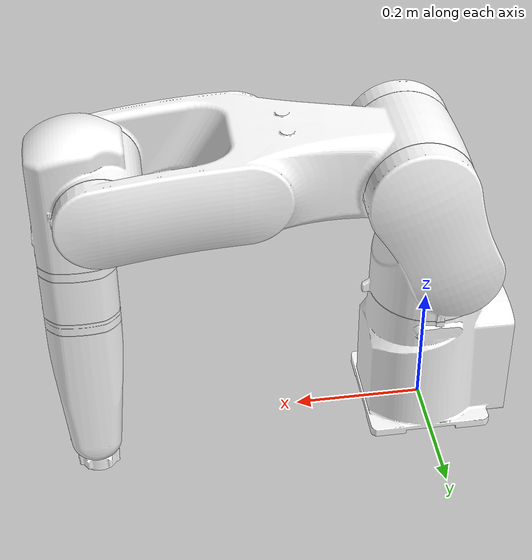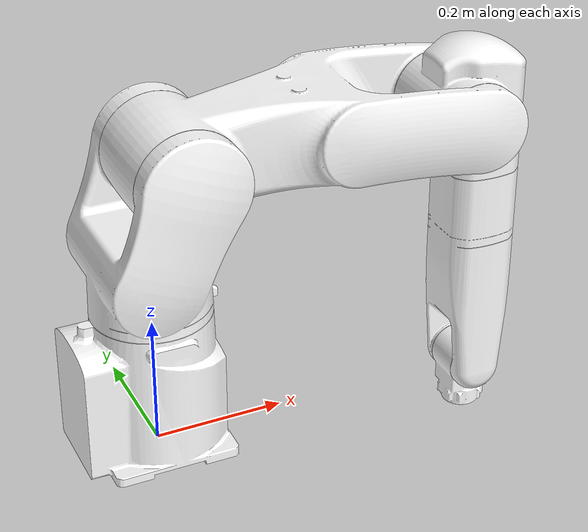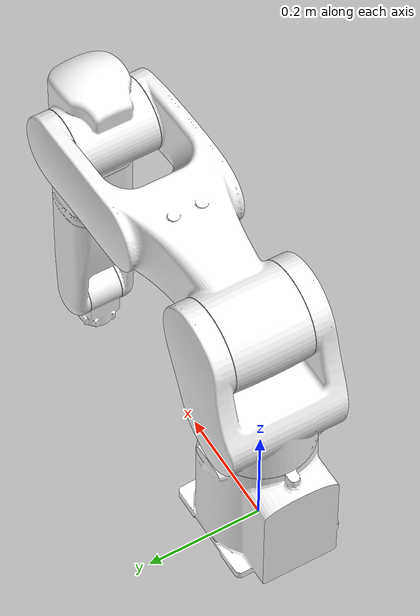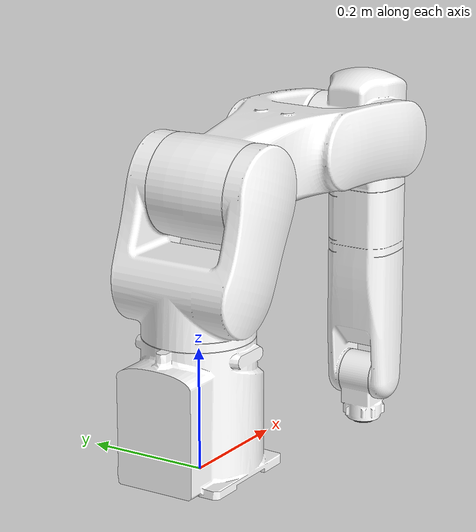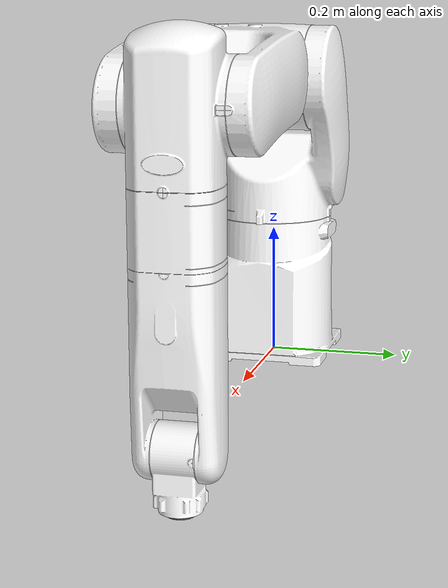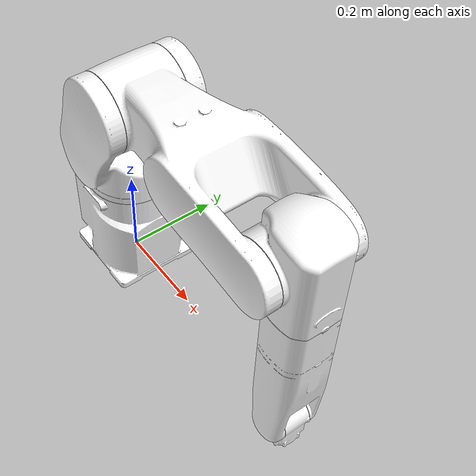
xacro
<?xml version="1.0"?>
<robot name="hdr_robot" xmlns:xacro="http://ros.org/wiki/xacro">
  <material name="white">
    <color rgba="1.0 1.0 1.0 1.0"/>
  </material>
  <material name="gray">
    <color rgba="0.3 0.3 0.3 1.0"/>
  </material>
  <xacro:property name="mesh_scale" value="0.001" />
  <link name="base_link">
    <visual>
      <geometry>
        <mesh filename="file://$(find hdr_description)/meshes/robots/hdf7_9/visual/base_body.stl" scale="${mesh_scale} ${mesh_scale} ${mesh_scale}"/>
      </geometry>
      <material name="white"/>
    </visual>
    <collision>
      <geometry>
        <mesh filename="file://$(find hdr_description)/meshes/robots/hdf7_9/collision/base_body.stl" scale="${mesh_scale} ${mesh_scale} ${mesh_scale}"/>
      </geometry>
    </collision>
    <inertial>
      <mass value="31.2543"/>
      <origin xyz="0 0 0" rpy="0 0 0"/>
      <inertia ixx="0.2232" ixy="0" ixz="0" iyy="0.255" iyz="0" izz="0.2208"/>
    </inertial>
  </link>
  <link name="lower_frame_link">
    <visual>
      <geometry>
        <mesh filename="file://$(find hdr_description)/meshes/robots/hdf7_9/visual/lower_frame.stl" scale="${mesh_scale} ${mesh_scale} ${mesh_scale}"/>
      </geometry>
      <material name="white"/>
    </visual>
    <collision>
      <geometry>
        <mesh filename="file://$(find hdr_description)/meshes/robots/hdf7_9/collision/lower_frame.stl" scale="${mesh_scale} ${mesh_scale} ${mesh_scale}"/>
      </geometry>
    </collision>
    <inertial>
      <mass value="44.2299"/>
      <origin xyz="0 0 0" rpy="0 0 0"/>
      <inertia ixx="0.5546" ixy="0" ixz="0" iyy="0.5166" iyz="0" izz="0.3673"/>
    </inertial>
  </link>
  <link name="upper_frame_link">
    <visual>
      <geometry>
        <mesh filename="file://$(find hdr_description)/meshes/robots/hdf7_9/visual/upper_frame.stl" scale="${mesh_scale} ${mesh_scale} ${mesh_scale}"/>
      </geometry>
      <material name="white"/>
    </visual>
    <collision>
      <geometry>
        <mesh filename="file://$(find hdr_description)/meshes/robots/hdf7_9/collision/upper_frame.stl" scale="${mesh_scale} ${mesh_scale} ${mesh_scale}"/>
      </geometry>
    </collision>
    <inertial>
      <mass value="22.4028"/>
      <origin xyz="0 0 0" rpy="0 0 0"/>
      <inertia ixx="0.7507" ixy="0" ixz="0" iyy="0.7101" iyz="0" izz="0.1485"/>
    </inertial>
  </link>
  <link name="arm_link">
    <visual>
      <geometry>
        <mesh filename="file://$(find hdr_description)/meshes/robots/hdf7_9/visual/arm.stl" scale="${mesh_scale} ${mesh_scale} ${mesh_scale}"/>
      </geometry>
      <material name="white"/>
    </visual>
    <collision>
      <geometry>
        <mesh filename="file://$(find hdr_description)/meshes/robots/hdf7_9/collision/arm.stl" scale="${mesh_scale} ${mesh_scale} ${mesh_scale}"/>
      </geometry>
    </collision>
    <inertial>
      <mass value="14.2656"/>
      <origin xyz="0 0 0" rpy="0 0 0"/>
      <inertia ixx="0.0538" ixy="0" ixz="0" iyy="0.0804" iyz="0" izz="0.0719"/>
    </inertial>
  </link>
  <link name="wrist_body_link">
    <visual>
      <geometry>
        <mesh filename="file://$(find hdr_description)/meshes/robots/hdf7_9/visual/wrist_body.stl" scale="${mesh_scale} ${mesh_scale} ${mesh_scale}"/>
      </geometry>
      <material name="white"/>
    </visual>
    <collision>
      <geometry>
        <mesh filename="file://$(find hdr_description)/meshes/robots/hdf7_9/collision/wrist_body.stl" scale="${mesh_scale} ${mesh_scale} ${mesh_scale}"/>
      </geometry>
    </collision>
    <inertial>
      <mass value="7.0632"/>
      <origin xyz="0 0 0" rpy="0 0 0"/>
      <inertia ixx="0.016" ixy="0" ixz="0" iyy="0.0956" iyz="0" izz="0.0963"/>
    </inertial>
  </link>
  <link name="wrist_holder_link">
    <visual>
      <geometry>
        <mesh filename="file://$(find hdr_description)/meshes/robots/hdf7_9/visual/wrist_holder.stl" scale="${mesh_scale} ${mesh_scale} ${mesh_scale}"/>
      </geometry>
      <material name="white"/>
    </visual>
    <collision>
      <geometry>
        <mesh filename="file://$(find hdr_description)/meshes/robots/hdf7_9/collision/wrist_holder.stl" scale="${mesh_scale} ${mesh_scale} ${mesh_scale}"/>
      </geometry>
    </collision>
    <inertial>
      <mass value="3.8171"/>
      <origin xyz="0 0 0" rpy="0 0 0"/>
      <inertia ixx="0.0034" ixy="0" ixz="0" iyy="0.0066" iyz="0" izz="0.0059"/>
    </inertial>
  </link>
  <link name="flange_link">
    <visual>
      <geometry>
        <mesh filename="file://$(find hdr_description)/meshes/robots/hdf7_9/visual/flange.stl" scale="${mesh_scale} ${mesh_scale} ${mesh_scale}"/>
      </geometry>
      <material name="gray"/>
    </visual>
    <collision>
      <geometry>
        <mesh filename="file://$(find hdr_description)/meshes/robots/hdf7_9/collision/flange.stl" scale="${mesh_scale} ${mesh_scale} ${mesh_scale}"/>
      </geometry>
    </collision>
    <inertial>
      <mass value="0.4672"/>
      <origin xyz="0 0 0" rpy="0 0 0"/>
      <inertia ixx="0.0001" ixy="0" ixz="0" iyy="0.0001" iyz="0" izz="0.0001"/>
    </inertial>
  </link>

  <joint name="j1" type="revolute">
    <parent link="base_link"/>
    <child link="lower_frame_link"/>
    <origin xyz="0 0 0" rpy="0 0 0"/>
    <axis xyz="0 0 1"/>
    <limit lower="-2.967" upper="2.967" effort="138.6" velocity="6.544"/>
  </joint>
  <joint name="j2" type="revolute">
    <parent link="lower_frame_link"/>
    <child link="upper_frame_link"/>
    <origin xyz="0.04 0 0.446" rpy="0 1.5708 0"/>
    <axis xyz="0 -1 0"/>
    <limit lower="-0.96" upper="3.14" effort="162.9" velocity="5.497"/>
  </joint>
  <joint name="j3" type="revolute">
    <parent link="upper_frame_link"/>
    <child link="arm_link"/>
    <origin xyz="0 0 0.445" rpy="0 0 0"/>
    <axis xyz="0 -1 0"/>
    <limit lower="-1.22" upper="3.71" effort="81.3" velocity="7.155"/>
  </joint>
  <joint name="j4" type="revolute">
    <parent link="arm_link"/>
    <child link="wrist_body_link"/>
    <origin xyz="0 0 0.04" rpy="0 0 0"/>
    <axis xyz="1 0 0"/>
    <limit lower="-3.316" upper="3.316" effort="19.1" velocity="9.599"/>
  </joint>
  <joint name="j5" type="revolute">
    <parent link="wrist_body_link"/>
    <child link="wrist_holder_link"/>
    <origin xyz="0.445 0 0" rpy="0 0 0"/>
    <axis xyz="0 -1 0"/>
    <limit lower="-2.356" upper="2.356" effort="16.3" velocity="9.599"/>
  </joint>
  <joint name="j6" type="revolute">
    <parent link="wrist_holder_link"/>
    <child link="flange_link"/>
    <origin xyz="0.0865 0 0" rpy="0 0 0"/>
    <axis xyz="1 0 0"/>
    <limit lower="-6.283" upper="6.283" effort="10.4" velocity="17.453"/>
  </joint>

  <link name="base"/>
  <joint name="base_link-base" type="fixed">
    <origin xyz="0 0 0" rpy="0 0 0"/>
    <parent link="base_link"/>
    <child link="base"/>
  </joint>
  <link name="flange"/>
  <joint name="flange_link-flange" type="fixed">
    <origin xyz="0 0 0" rpy="0 0 0"/>
    <parent link="flange_link"/>
    <child link="flange"/>
  </joint>
  <link name="tool0"/>
  <joint name="flange-tool0" type="fixed">
    <origin xyz="0 0 0" rpy="0 1.5708 0"/>
    <parent link="flange"/>
    <child link="tool0"/>
  </joint>

  <link name="world"/>
  <joint name="world_joint" type="fixed">
    <parent link="world"/>
    <child link="base_link"/>
    <origin xyz="0 0 0" rpy="0 0 0"/>
  </joint>

</robot>
